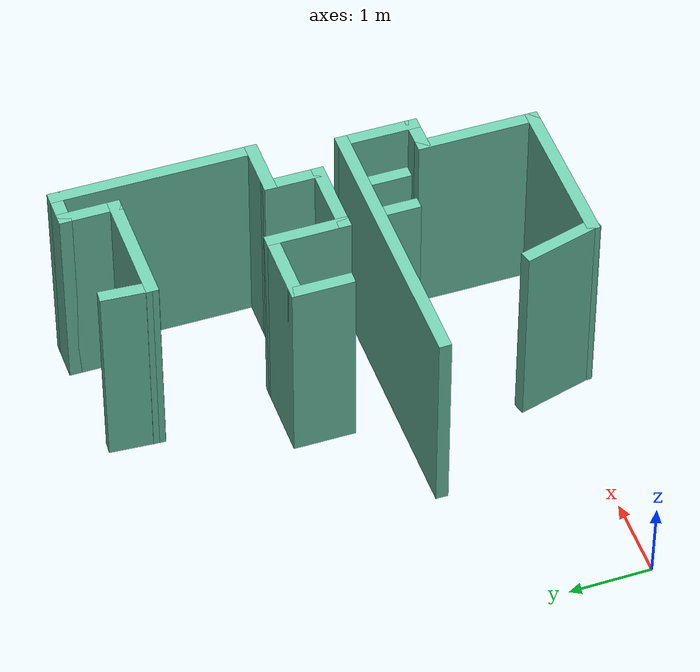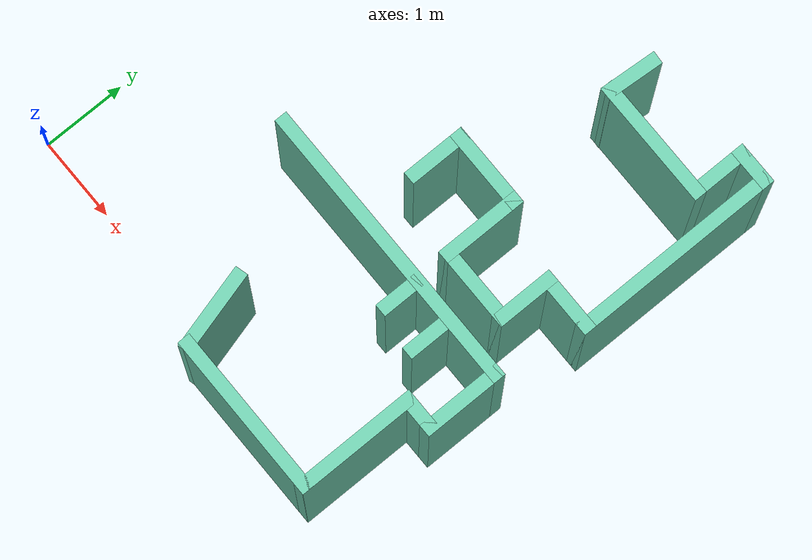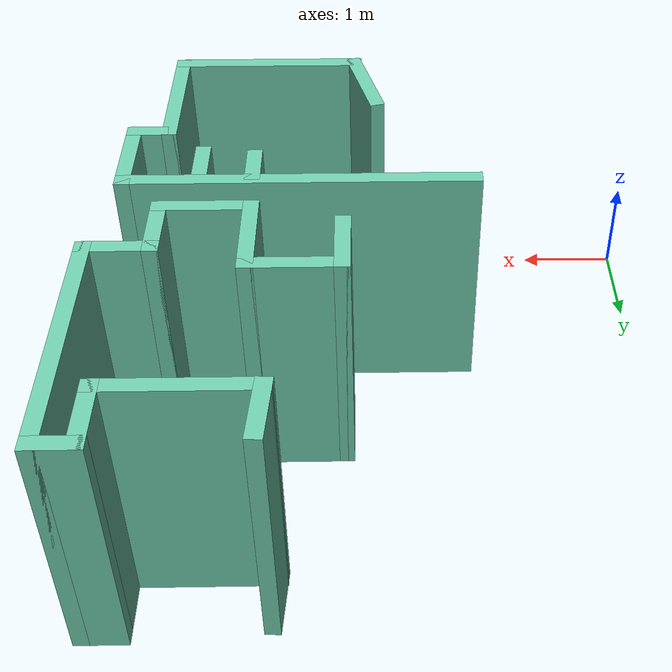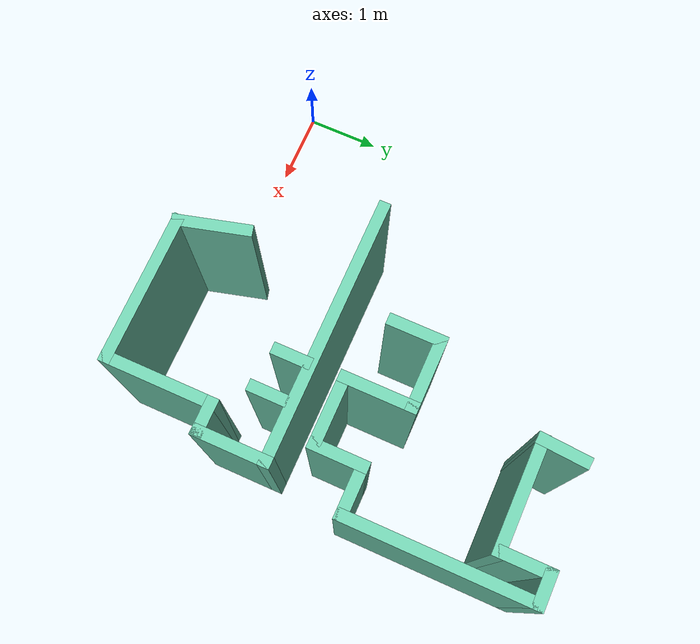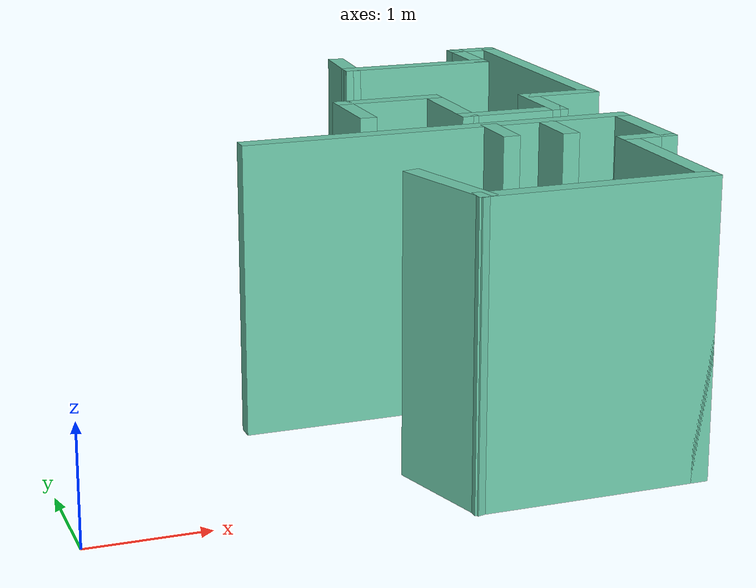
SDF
<sdf version="1.6">
 <model name="map_28">
  <link name="Wall_100">
   <pose>4.38795 2.27226 0 0 -0 0</pose>
   <visual name="Wall_100_Visual">
    <pose>0 0 1.25 0 -0 0</pose>
    <geometry><box><size>1 0.15 2.5</size></box></geometry>
    <material>
     <script><uri>file://media/materials/scripts/gazebo.material</uri><name>Gazebo/Grey</name></script>
     <ambient>0.435294 0.796078 0.67451 1</ambient>
     <shader type="pixel"/>
    </material>
    <meta><layer>0</layer></meta>
   </visual>
   <collision name="Wall_100_Collision">
    <pose>0 0 1.25 0 -0 0</pose>
    <geometry><box><size>1 0.15 2.5</size></box></geometry>
    <surface>
     <friction>
      <ode><mu>1</mu><mu2>1</mu2><fdir1>0 0 0</fdir1><slip1>0</slip1><slip2>0</slip2></ode>
      <torsional>
       <coefficient>1</coefficient>
       <patch_radius>0</patch_radius>
       <surface_radius>0</surface_radius>
       <use_patch_radius>1</use_patch_radius>
       <ode><slip>0</slip></ode>
      </torsional>
     </friction>
     <bounce><restitution_coefficient>0</restitution_coefficient><threshold>1e+06</threshold></bounce>
     <contact>
      <collide_without_contact>0</collide_without_contact>
      <collide_without_contact_bitmask>1</collide_without_contact_bitmask>
      <collide_bitmask>1</collide_bitmask>
      <ode>
       <soft_cfm>0</soft_cfm>
       <soft_erp>0.2</soft_erp>
       <kp>1e+13</kp>
       <kd>1</kd>
       <max_vel>0.01</max_vel>
       <min_depth>0</min_depth>
      </ode>
      <bullet>
       <split_impulse>1</split_impulse>
       <split_impulse_penetration_threshold>-0.01</split_impulse_penetration_threshold>
       <soft_cfm>0</soft_cfm>
       <soft_erp>0.2</soft_erp>
       <kp>1e+13</kp>
       <kd>1</kd>
      </bullet>
     </contact>
    </surface>
   </collision>
  </link>
  <link name="Wall_101">
   <pose>4.81295 2.57226 0 0 -0 1.5708</pose>
   <visual name="Wall_101_Visual">
    <pose>0 0 1.25 0 -0 0</pose>
    <geometry><box><size>0.75 0.15 2.5</size></box></geometry>
    <material>
     <script><uri>file://media/materials/scripts/gazebo.material</uri><name>Gazebo/Grey</name></script>
     <ambient>0.435294 0.796078 0.67451 1</ambient>
     <shader type="pixel"/>
    </material>
    <meta><layer>0</layer></meta>
   </visual>
   <collision name="Wall_101_Collision">
    <pose>0 0 1.25 0 -0 0</pose>
    <geometry><box><size>0.75 0.15 2.5</size></box></geometry>
    <surface>
     <friction>
      <ode><mu>1</mu><mu2>1</mu2><fdir1>0 0 0</fdir1><slip1>0</slip1><slip2>0</slip2></ode>
      <torsional>
       <coefficient>1</coefficient>
       <patch_radius>0</patch_radius>
       <surface_radius>0</surface_radius>
       <use_patch_radius>1</use_patch_radius>
       <ode><slip>0</slip></ode>
      </torsional>
     </friction>
     <bounce><restitution_coefficient>0</restitution_coefficient><threshold>1e+06</threshold></bounce>
     <contact>
      <collide_without_contact>0</collide_without_contact>
      <collide_without_contact_bitmask>1</collide_without_contact_bitmask>
      <collide_bitmask>1</collide_bitmask>
      <ode>
       <soft_cfm>0</soft_cfm>
       <soft_erp>0.2</soft_erp>
       <kp>1e+13</kp>
       <kd>1</kd>
       <max_vel>0.01</max_vel>
       <min_depth>0</min_depth>
      </ode>
      <bullet>
       <split_impulse>1</split_impulse>
       <split_impulse_penetration_threshold>-0.01</split_impulse_penetration_threshold>
       <soft_cfm>0</soft_cfm>
       <soft_erp>0.2</soft_erp>
       <kp>1e+13</kp>
       <kd>1</kd>
      </bullet>
     </contact>
    </surface>
   </collision>
  </link>
  <link name="Wall_102">
   <pose>5.11295 2.87226 0 0 -0 0</pose>
   <visual name="Wall_102_Visual">
    <pose>0 0 1.25 0 -0 0</pose>
    <geometry><box><size>0.75 0.15 2.5</size></box></geometry>
    <material>
     <script><uri>file://media/materials/scripts/gazebo.material</uri><name>Gazebo/Grey</name></script>
     <ambient>0.435294 0.796078 0.67451 1</ambient>
     <shader type="pixel"/>
    </material>
    <meta><layer>0</layer></meta>
   </visual>
   <collision name="Wall_102_Collision">
    <pose>0 0 1.25 0 -0 0</pose>
    <geometry><box><size>0.75 0.15 2.5</size></box></geometry>
    <surface>
     <friction>
      <ode><mu>1</mu><mu2>1</mu2><fdir1>0 0 0</fdir1><slip1>0</slip1><slip2>0</slip2></ode>
      <torsional>
       <coefficient>1</coefficient>
       <patch_radius>0</patch_radius>
       <surface_radius>0</surface_radius>
       <use_patch_radius>1</use_patch_radius>
       <ode><slip>0</slip></ode>
      </torsional>
     </friction>
     <bounce><restitution_coefficient>0</restitution_coefficient><threshold>1e+06</threshold></bounce>
     <contact>
      <collide_without_contact>0</collide_without_contact>
      <collide_without_contact_bitmask>1</collide_without_contact_bitmask>
      <collide_bitmask>1</collide_bitmask>
      <ode>
       <soft_cfm>0</soft_cfm>
       <soft_erp>0.2</soft_erp>
       <kp>1e+13</kp>
       <kd>1</kd>
       <max_vel>0.01</max_vel>
       <min_depth>0</min_depth>
      </ode>
      <bullet>
       <split_impulse>1</split_impulse>
       <split_impulse_penetration_threshold>-0.01</split_impulse_penetration_threshold>
       <soft_cfm>0</soft_cfm>
       <soft_erp>0.2</soft_erp>
       <kp>1e+13</kp>
       <kd>1</kd>
      </bullet>
     </contact>
    </surface>
   </collision>
  </link>
  <link name="Wall_103">
   <pose>5.41295 4.04726 0 0 -0 1.5708</pose>
   <visual name="Wall_103_Visual">
    <pose>0 0 1.25 0 -0 0</pose>
    <geometry><box><size>2.5 0.15 2.5</size></box></geometry>
    <material>
     <script><uri>file://media/materials/scripts/gazebo.material</uri><name>Gazebo/Grey</name></script>
     <ambient>0.435294 0.796078 0.67451 1</ambient>
     <shader type="pixel"/>
    </material>
    <meta><layer>0</layer></meta>
   </visual>
   <collision name="Wall_103_Collision">
    <pose>0 0 1.25 0 -0 0</pose>
    <geometry><box><size>2.5 0.15 2.5</size></box></geometry>
    <surface>
     <friction>
      <ode><mu>1</mu><mu2>1</mu2><fdir1>0 0 0</fdir1><slip1>0</slip1><slip2>0</slip2></ode>
      <torsional>
       <coefficient>1</coefficient>
       <patch_radius>0</patch_radius>
       <surface_radius>0</surface_radius>
       <use_patch_radius>1</use_patch_radius>
       <ode><slip>0</slip></ode>
      </torsional>
     </friction>
     <bounce><restitution_coefficient>0</restitution_coefficient><threshold>1e+06</threshold></bounce>
     <contact>
      <collide_without_contact>0</collide_without_contact>
      <collide_without_contact_bitmask>1</collide_without_contact_bitmask>
      <collide_bitmask>1</collide_bitmask>
      <ode>
       <soft_cfm>0</soft_cfm>
       <soft_erp>0.2</soft_erp>
       <kp>1e+13</kp>
       <kd>1</kd>
       <max_vel>0.01</max_vel>
       <min_depth>0</min_depth>
      </ode>
      <bullet>
       <split_impulse>1</split_impulse>
       <split_impulse_penetration_threshold>-0.01</split_impulse_penetration_threshold>
       <soft_cfm>0</soft_cfm>
       <soft_erp>0.2</soft_erp>
       <kp>1e+13</kp>
       <kd>1</kd>
      </bullet>
     </contact>
    </surface>
   </collision>
  </link>
  <link name="Wall_104">
   <pose>5.23795 5.22226 0 0 -0 3.14159</pose>
   <visual name="Wall_104_Visual">
    <pose>0 0 1.25 0 -0 0</pose>
    <geometry><box><size>0.5 0.15 2.5</size></box></geometry>
    <material>
     <script><uri>file://media/materials/scripts/gazebo.material</uri><name>Gazebo/Grey</name></script>
     <ambient>0.435294 0.796078 0.67451 1</ambient>
     <shader type="pixel"/>
    </material>
    <meta><layer>0</layer></meta>
   </visual>
   <collision name="Wall_104_Collision">
    <pose>0 0 1.25 0 -0 0</pose>
    <geometry><box><size>0.5 0.15 2.5</size></box></geometry>
    <surface>
     <friction>
      <ode><mu>1</mu><mu2>1</mu2><fdir1>0 0 0</fdir1><slip1>0</slip1><slip2>0</slip2></ode>
      <torsional>
       <coefficient>1</coefficient>
       <patch_radius>0</patch_radius>
       <surface_radius>0</surface_radius>
       <use_patch_radius>1</use_patch_radius>
       <ode><slip>0</slip></ode>
      </torsional>
     </friction>
     <bounce><restitution_coefficient>0</restitution_coefficient><threshold>1e+06</threshold></bounce>
     <contact>
      <collide_without_contact>0</collide_without_contact>
      <collide_without_contact_bitmask>1</collide_without_contact_bitmask>
      <collide_bitmask>1</collide_bitmask>
      <ode>
       <soft_cfm>0</soft_cfm>
       <soft_erp>0.2</soft_erp>
       <kp>1e+13</kp>
       <kd>1</kd>
       <max_vel>0.01</max_vel>
       <min_depth>0</min_depth>
      </ode>
      <bullet>
       <split_impulse>1</split_impulse>
       <split_impulse_penetration_threshold>-0.01</split_impulse_penetration_threshold>
       <soft_cfm>0</soft_cfm>
       <soft_erp>0.2</soft_erp>
       <kp>1e+13</kp>
       <kd>1</kd>
      </bullet>
     </contact>
    </surface>
   </collision>
  </link>
  <link name="Wall_105">
   <pose>5.06295 4.92226 0 0 0 -1.5708</pose>
   <visual name="Wall_105_Visual">
    <pose>0 0 1.25 0 -0 0</pose>
    <geometry><box><size>0.75 0.15 2.5</size></box></geometry>
    <material>
     <script><uri>file://media/materials/scripts/gazebo.material</uri><name>Gazebo/Grey</name></script>
     <ambient>0.435294 0.796078 0.67451 1</ambient>
     <shader type="pixel"/>
    </material>
    <meta><layer>0</layer></meta>
   </visual>
   <collision name="Wall_105_Collision">
    <pose>0 0 1.25 0 -0 0</pose>
    <geometry><box><size>0.75 0.15 2.5</size></box></geometry>
    <surface>
     <friction>
      <ode><mu>1</mu><mu2>1</mu2><fdir1>0 0 0</fdir1><slip1>0</slip1><slip2>0</slip2></ode>
      <torsional>
       <coefficient>1</coefficient>
       <patch_radius>0</patch_radius>
       <surface_radius>0</surface_radius>
       <use_patch_radius>1</use_patch_radius>
       <ode><slip>0</slip></ode>
      </torsional>
     </friction>
     <bounce><restitution_coefficient>0</restitution_coefficient><threshold>1e+06</threshold></bounce>
     <contact>
      <collide_without_contact>0</collide_without_contact>
      <collide_without_contact_bitmask>1</collide_without_contact_bitmask>
      <collide_bitmask>1</collide_bitmask>
      <ode>
       <soft_cfm>0</soft_cfm>
       <soft_erp>0.2</soft_erp>
       <kp>1e+13</kp>
       <kd>1</kd>
       <max_vel>0.01</max_vel>
       <min_depth>0</min_depth>
      </ode>
      <bullet>
       <split_impulse>1</split_impulse>
       <split_impulse_penetration_threshold>-0.01</split_impulse_penetration_threshold>
       <soft_cfm>0</soft_cfm>
       <soft_erp>0.2</soft_erp>
       <kp>1e+13</kp>
       <kd>1</kd>
      </bullet>
     </contact>
    </surface>
   </collision>
  </link>
  <link name="Wall_108">
   <pose>4.38795 4.62226 0 0 -0 3.14159</pose>
   <visual name="Wall_108_Visual">
    <pose>0 0 1.25 0 -0 0</pose>
    <geometry><box><size>1.5 0.15 2.5</size></box></geometry>
    <material>
     <script><uri>file://media/materials/scripts/gazebo.material</uri><name>Gazebo/Grey</name></script>
     <ambient>0.435294 0.796078 0.67451 1</ambient>
     <shader type="pixel"/>
    </material>
    <meta><layer>0</layer></meta>
   </visual>
   <collision name="Wall_108_Collision">
    <pose>0 0 1.25 0 -0 0</pose>
    <geometry><box><size>1.5 0.15 2.5</size></box></geometry>
    <surface>
     <friction>
      <ode><mu>1</mu><mu2>1</mu2><fdir1>0 0 0</fdir1><slip1>0</slip1><slip2>0</slip2></ode>
      <torsional>
       <coefficient>1</coefficient>
       <patch_radius>0</patch_radius>
       <surface_radius>0</surface_radius>
       <use_patch_radius>1</use_patch_radius>
       <ode><slip>0</slip></ode>
      </torsional>
     </friction>
     <bounce><restitution_coefficient>0</restitution_coefficient><threshold>1e+06</threshold></bounce>
     <contact>
      <collide_without_contact>0</collide_without_contact>
      <collide_without_contact_bitmask>1</collide_without_contact_bitmask>
      <collide_bitmask>1</collide_bitmask>
      <ode>
       <soft_cfm>0</soft_cfm>
       <soft_erp>0.2</soft_erp>
       <kp>1e+13</kp>
       <kd>1</kd>
       <max_vel>0.01</max_vel>
       <min_depth>0</min_depth>
      </ode>
      <bullet>
       <split_impulse>1</split_impulse>
       <split_impulse_penetration_threshold>-0.01</split_impulse_penetration_threshold>
       <soft_cfm>0</soft_cfm>
       <soft_erp>0.2</soft_erp>
       <kp>1e+13</kp>
       <kd>1</kd>
      </bullet>
     </contact>
    </surface>
   </collision>
  </link>
  <link name="Wall_109">
   <pose>3.73137 4.88054 0 0 -0 1.4996</pose>
   <visual name="Wall_109_Visual">
    <pose>0 0 1.25 0 -0 0</pose>
    <geometry><box><size>0.667875 0.15 2.5</size></box></geometry>
    <material>
     <script><uri>file://media/materials/scripts/gazebo.material</uri><name>Gazebo/Grey</name></script>
     <ambient>0.435294 0.796078 0.67451 1</ambient>
     <shader type="pixel"/>
    </material>
    <meta><layer>0</layer></meta>
   </visual>
   <collision name="Wall_109_Collision">
    <pose>0 0 1.25 0 -0 0</pose>
    <geometry><box><size>0.667875 0.15 2.5</size></box></geometry>
    <surface>
     <friction>
      <ode><mu>1</mu><mu2>1</mu2><fdir1>0 0 0</fdir1><slip1>0</slip1><slip2>0</slip2></ode>
      <torsional>
       <coefficient>1</coefficient>
       <patch_radius>0</patch_radius>
       <surface_radius>0</surface_radius>
       <use_patch_radius>1</use_patch_radius>
       <ode><slip>0</slip></ode>
      </torsional>
     </friction>
     <bounce><restitution_coefficient>0</restitution_coefficient><threshold>1e+06</threshold></bounce>
     <contact>
      <collide_without_contact>0</collide_without_contact>
      <collide_without_contact_bitmask>1</collide_without_contact_bitmask>
      <collide_bitmask>1</collide_bitmask>
      <ode>
       <soft_cfm>0</soft_cfm>
       <soft_erp>0.2</soft_erp>
       <kp>1e+13</kp>
       <kd>1</kd>
       <max_vel>0.01</max_vel>
       <min_depth>0</min_depth>
      </ode>
      <bullet>
       <split_impulse>1</split_impulse>
       <split_impulse_penetration_threshold>-0.01</split_impulse_penetration_threshold>
       <soft_cfm>0</soft_cfm>
       <soft_erp>0.2</soft_erp>
       <kp>1e+13</kp>
       <kd>1</kd>
      </bullet>
     </contact>
    </surface>
   </collision>
  </link>
  <link name="Wall_124">
   <pose>3.9811 1.60989 0 0 0 -1.5708</pose>
   <visual name="Wall_124_Visual">
    <pose>0 0 1.25 0 -0 0</pose>
    <geometry><box><size>0.5 0.15 2.5</size></box></geometry>
    <material>
     <script><uri>file://media/materials/scripts/gazebo.material</uri><name>Gazebo/Grey</name></script>
     <ambient>0.435294 0.796078 0.67451 1</ambient>
     <shader type="pixel"/>
    </material>
    <meta><layer>0</layer></meta>
   </visual>
   <collision name="Wall_124_Collision">
    <pose>0 0 1.25 0 -0 0</pose>
    <geometry><box><size>0.5 0.15 2.5</size></box></geometry>
    <surface>
     <friction>
      <ode><mu>1</mu><mu2>1</mu2><fdir1>0 0 0</fdir1><slip1>0</slip1><slip2>0</slip2></ode>
      <torsional>
       <coefficient>1</coefficient>
       <patch_radius>0</patch_radius>
       <surface_radius>0</surface_radius>
       <use_patch_radius>1</use_patch_radius>
       <ode><slip>0</slip></ode>
      </torsional>
     </friction>
     <bounce><restitution_coefficient>0</restitution_coefficient><threshold>1e+06</threshold></bounce>
     <contact>
      <collide_without_contact>0</collide_without_contact>
      <collide_without_contact_bitmask>1</collide_without_contact_bitmask>
      <collide_bitmask>1</collide_bitmask>
      <ode>
       <soft_cfm>0</soft_cfm>
       <soft_erp>0.2</soft_erp>
       <kp>1e+13</kp>
       <kd>1</kd>
       <max_vel>0.01</max_vel>
       <min_depth>0</min_depth>
      </ode>
      <bullet>
       <split_impulse>1</split_impulse>
       <split_impulse_penetration_threshold>-0.01</split_impulse_penetration_threshold>
       <soft_cfm>0</soft_cfm>
       <soft_erp>0.2</soft_erp>
       <kp>1e+13</kp>
       <kd>1</kd>
      </bullet>
     </contact>
    </surface>
   </collision>
  </link>
  <link name="Wall_126">
   <pose>4.48997 1.54049 0 0 0 -1.5708</pose>
   <visual name="Wall_126_Visual">
    <pose>0 0 1.25 0 -0 0</pose>
    <geometry><box><size>0.5 0.15 2.5</size></box></geometry>
    <material>
     <script><uri>file://media/materials/scripts/gazebo.material</uri><name>Gazebo/Grey</name></script>
     <ambient>0.435294 0.796078 0.67451 1</ambient>
     <shader type="pixel"/>
    </material>
    <meta><layer>0</layer></meta>
   </visual>
   <collision name="Wall_126_Collision">
    <pose>0 0 1.25 0 -0 0</pose>
    <geometry><box><size>0.5 0.15 2.5</size></box></geometry>
    <surface>
     <friction>
      <ode><mu>1</mu><mu2>1</mu2><fdir1>0 0 0</fdir1><slip1>0</slip1><slip2>0</slip2></ode>
      <torsional>
       <coefficient>1</coefficient>
       <patch_radius>0</patch_radius>
       <surface_radius>0</surface_radius>
       <use_patch_radius>1</use_patch_radius>
       <ode><slip>0</slip></ode>
      </torsional>
     </friction>
     <bounce><restitution_coefficient>0</restitution_coefficient><threshold>1e+06</threshold></bounce>
     <contact>
      <collide_without_contact>0</collide_without_contact>
      <collide_without_contact_bitmask>1</collide_without_contact_bitmask>
      <collide_bitmask>1</collide_bitmask>
      <ode>
       <soft_cfm>0</soft_cfm>
       <soft_erp>0.2</soft_erp>
       <kp>1e+13</kp>
       <kd>1</kd>
       <max_vel>0.01</max_vel>
       <min_depth>0</min_depth>
      </ode>
      <bullet>
       <split_impulse>1</split_impulse>
       <split_impulse_penetration_threshold>-0.01</split_impulse_penetration_threshold>
       <soft_cfm>0</soft_cfm>
       <soft_erp>0.2</soft_erp>
       <kp>1e+13</kp>
       <kd>1</kd>
      </bullet>
     </contact>
    </surface>
   </collision>
  </link>
  <link name="Wall_74">
   <pose>2.89955 0.058662 0 0 0 -1.309</pose>
   <visual name="Wall_74_Visual">
    <pose>0 0 1.25 0 -0 0</pose>
    <geometry><box><size>1 0.15 2.5</size></box></geometry>
    <material>
     <script><uri>file://media/materials/scripts/gazebo.material</uri><name>Gazebo/Grey</name></script>
     <ambient>0.435294 0.796078 0.67451 1</ambient>
     <shader type="pixel"/>
    </material>
    <meta><layer>0</layer></meta>
   </visual>
   <collision name="Wall_74_Collision">
    <pose>0 0 1.25 0 -0 0</pose>
    <geometry><box><size>1 0.15 2.5</size></box></geometry>
    <surface>
     <friction>
      <ode><mu>1</mu><mu2>1</mu2><fdir1>0 0 0</fdir1><slip1>0</slip1><slip2>0</slip2></ode>
      <torsional>
       <coefficient>1</coefficient>
       <patch_radius>0</patch_radius>
       <surface_radius>0</surface_radius>
       <use_patch_radius>1</use_patch_radius>
       <ode><slip>0</slip></ode>
      </torsional>
     </friction>
     <bounce><restitution_coefficient>0</restitution_coefficient><threshold>1e+06</threshold></bounce>
     <contact>
      <collide_without_contact>0</collide_without_contact>
      <collide_without_contact_bitmask>1</collide_without_contact_bitmask>
      <collide_bitmask>1</collide_bitmask>
      <ode>
       <soft_cfm>0</soft_cfm>
       <soft_erp>0.2</soft_erp>
       <kp>1e+13</kp>
       <kd>1</kd>
       <max_vel>0.01</max_vel>
       <min_depth>0</min_depth>
      </ode>
      <bullet>
       <split_impulse>1</split_impulse>
       <split_impulse_penetration_threshold>-0.01</split_impulse_penetration_threshold>
       <soft_cfm>0</soft_cfm>
       <soft_erp>0.2</soft_erp>
       <kp>1e+13</kp>
       <kd>1</kd>
      </bullet>
     </contact>
    </surface>
   </collision>
  </link>
  <link name="Wall_75">
   <pose>3.93454 -0.351857 0 0 -0 0</pose>
   <visual name="Wall_75_Visual">
    <pose>0 0 1.25 0 -0 0</pose>
    <geometry><box><size>2 0.15 2.5</size></box></geometry>
    <material>
     <script><uri>file://media/materials/scripts/gazebo.material</uri><name>Gazebo/Grey</name></script>
     <ambient>0.435294 0.796078 0.67451 1</ambient>
     <shader type="pixel"/>
    </material>
    <meta><layer>0</layer></meta>
   </visual>
   <collision name="Wall_75_Collision">
    <pose>0 0 1.25 0 -0 0</pose>
    <geometry><box><size>2 0.15 2.5</size></box></geometry>
    <surface>
     <friction>
      <ode><mu>1</mu><mu2>1</mu2><fdir1>0 0 0</fdir1><slip1>0</slip1><slip2>0</slip2></ode>
      <torsional>
       <coefficient>1</coefficient>
       <patch_radius>0</patch_radius>
       <surface_radius>0</surface_radius>
       <use_patch_radius>1</use_patch_radius>
       <ode><slip>0</slip></ode>
      </torsional>
     </friction>
     <bounce><restitution_coefficient>0</restitution_coefficient><threshold>1e+06</threshold></bounce>
     <contact>
      <collide_without_contact>0</collide_without_contact>
      <collide_without_contact_bitmask>1</collide_without_contact_bitmask>
      <collide_bitmask>1</collide_bitmask>
      <ode>
       <soft_cfm>0</soft_cfm>
       <soft_erp>0.2</soft_erp>
       <kp>1e+13</kp>
       <kd>1</kd>
       <max_vel>0.01</max_vel>
       <min_depth>0</min_depth>
      </ode>
      <bullet>
       <split_impulse>1</split_impulse>
       <split_impulse_penetration_threshold>-0.01</split_impulse_penetration_threshold>
       <soft_cfm>0</soft_cfm>
       <soft_erp>0.2</soft_erp>
       <kp>1e+13</kp>
       <kd>1</kd>
      </bullet>
     </contact>
    </surface>
   </collision>
  </link>
  <link name="Wall_76">
   <pose>4.85954 0.323143 0 0 -0 1.5708</pose>
   <visual name="Wall_76_Visual">
    <pose>0 0 1.25 0 -0 0</pose>
    <geometry><box><size>1.5 0.15 2.5</size></box></geometry>
    <material>
     <script><uri>file://media/materials/scripts/gazebo.material</uri><name>Gazebo/Grey</name></script>
     <ambient>0.435294 0.796078 0.67451 1</ambient>
     <shader type="pixel"/>
    </material>
    <meta><layer>0</layer></meta>
   </visual>
   <collision name="Wall_76_Collision">
    <pose>0 0 1.25 0 -0 0</pose>
    <geometry><box><size>1.5 0.15 2.5</size></box></geometry>
    <surface>
     <friction>
      <ode><mu>1</mu><mu2>1</mu2><fdir1>0 0 0</fdir1><slip1>0</slip1><slip2>0</slip2></ode>
      <torsional>
       <coefficient>1</coefficient>
       <patch_radius>0</patch_radius>
       <surface_radius>0</surface_radius>
       <use_patch_radius>1</use_patch_radius>
       <ode><slip>0</slip></ode>
      </torsional>
     </friction>
     <bounce><restitution_coefficient>0</restitution_coefficient><threshold>1e+06</threshold></bounce>
     <contact>
      <collide_without_contact>0</collide_without_contact>
      <collide_without_contact_bitmask>1</collide_without_contact_bitmask>
      <collide_bitmask>1</collide_bitmask>
      <ode>
       <soft_cfm>0</soft_cfm>
       <soft_erp>0.2</soft_erp>
       <kp>1e+13</kp>
       <kd>1</kd>
       <max_vel>0.01</max_vel>
       <min_depth>0</min_depth>
      </ode>
      <bullet>
       <split_impulse>1</split_impulse>
       <split_impulse_penetration_threshold>-0.01</split_impulse_penetration_threshold>
       <soft_cfm>0</soft_cfm>
       <soft_erp>0.2</soft_erp>
       <kp>1e+13</kp>
       <kd>1</kd>
      </bullet>
     </contact>
    </surface>
   </collision>
  </link>
  <link name="Wall_77">
   <pose>5.03454 0.998143 0 0 -0 0</pose>
   <visual name="Wall_77_Visual">
    <pose>0 0 1.25 0 -0 0</pose>
    <geometry><box><size>0.5 0.15 2.5</size></box></geometry>
    <material>
     <script><uri>file://media/materials/scripts/gazebo.material</uri><name>Gazebo/Grey</name></script>
     <ambient>0.435294 0.796078 0.67451 1</ambient>
     <shader type="pixel"/>
    </material>
    <meta><layer>0</layer></meta>
   </visual>
   <collision name="Wall_77_Collision">
    <pose>0 0 1.25 0 -0 0</pose>
    <geometry><box><size>0.5 0.15 2.5</size></box></geometry>
    <surface>
     <friction>
      <ode><mu>1</mu><mu2>1</mu2><fdir1>0 0 0</fdir1><slip1>0</slip1><slip2>0</slip2></ode>
      <torsional>
       <coefficient>1</coefficient>
       <patch_radius>0</patch_radius>
       <surface_radius>0</surface_radius>
       <use_patch_radius>1</use_patch_radius>
       <ode><slip>0</slip></ode>
      </torsional>
     </friction>
     <bounce><restitution_coefficient>0</restitution_coefficient><threshold>1e+06</threshold></bounce>
     <contact>
      <collide_without_contact>0</collide_without_contact>
      <collide_without_contact_bitmask>1</collide_without_contact_bitmask>
      <collide_bitmask>1</collide_bitmask>
      <ode>
       <soft_cfm>0</soft_cfm>
       <soft_erp>0.2</soft_erp>
       <kp>1e+13</kp>
       <kd>1</kd>
       <max_vel>0.01</max_vel>
       <min_depth>0</min_depth>
      </ode>
      <bullet>
       <split_impulse>1</split_impulse>
       <split_impulse_penetration_threshold>-0.01</split_impulse_penetration_threshold>
       <soft_cfm>0</soft_cfm>
       <soft_erp>0.2</soft_erp>
       <kp>1e+13</kp>
       <kd>1</kd>
      </bullet>
     </contact>
    </surface>
   </collision>
  </link>
  <link name="Wall_78">
   <pose>5.20955 1.42314 0 0 -0 1.5708</pose>
   <visual name="Wall_78_Visual">
    <pose>0 0 1.25 0 -0 0</pose>
    <geometry><box><size>1 0.15 2.5</size></box></geometry>
    <material>
     <script><uri>file://media/materials/scripts/gazebo.material</uri><name>Gazebo/Grey</name></script>
     <ambient>0.435294 0.796078 0.67451 1</ambient>
     <shader type="pixel"/>
    </material>
    <meta><layer>0</layer></meta>
   </visual>
   <collision name="Wall_78_Collision">
    <pose>0 0 1.25 0 -0 0</pose>
    <geometry><box><size>1 0.15 2.5</size></box></geometry>
    <surface>
     <friction>
      <ode><mu>1</mu><mu2>1</mu2><fdir1>0 0 0</fdir1><slip1>0</slip1><slip2>0</slip2></ode>
      <torsional>
       <coefficient>1</coefficient>
       <patch_radius>0</patch_radius>
       <surface_radius>0</surface_radius>
       <use_patch_radius>1</use_patch_radius>
       <ode><slip>0</slip></ode>
      </torsional>
     </friction>
     <bounce><restitution_coefficient>0</restitution_coefficient><threshold>1e+06</threshold></bounce>
     <contact>
      <collide_without_contact>0</collide_without_contact>
      <collide_without_contact_bitmask>1</collide_without_contact_bitmask>
      <collide_bitmask>1</collide_bitmask>
      <ode>
       <soft_cfm>0</soft_cfm>
       <soft_erp>0.2</soft_erp>
       <kp>1e+13</kp>
       <kd>1</kd>
       <max_vel>0.01</max_vel>
       <min_depth>0</min_depth>
      </ode>
      <bullet>
       <split_impulse>1</split_impulse>
       <split_impulse_penetration_threshold>-0.01</split_impulse_penetration_threshold>
       <soft_cfm>0</soft_cfm>
       <soft_erp>0.2</soft_erp>
       <kp>1e+13</kp>
       <kd>1</kd>
      </bullet>
     </contact>
    </surface>
   </collision>
  </link>
  <link name="Wall_79">
   <pose>3.53455 1.84814 0 0 -0 3.14159</pose>
   <visual name="Wall_79_Visual">
    <pose>0 0 1.25 0 -0 0</pose>
    <geometry><box><size>3.5 0.15 2.5</size></box></geometry>
    <material>
     <script><uri>file://media/materials/scripts/gazebo.material</uri><name>Gazebo/Grey</name></script>
     <ambient>0.435294 0.796078 0.67451 1</ambient>
     <shader type="pixel"/>
    </material>
    <meta><layer>0</layer></meta>
   </visual>
   <collision name="Wall_79_Collision">
    <pose>0 0 1.25 0 -0 0</pose>
    <geometry><box><size>3.5 0.15 2.5</size></box></geometry>
    <surface>
     <friction>
      <ode><mu>1</mu><mu2>1</mu2><fdir1>0 0 0</fdir1><slip1>0</slip1><slip2>0</slip2></ode>
      <torsional>
       <coefficient>1</coefficient>
       <patch_radius>0</patch_radius>
       <surface_radius>0</surface_radius>
       <use_patch_radius>1</use_patch_radius>
       <ode><slip>0</slip></ode>
      </torsional>
     </friction>
     <bounce><restitution_coefficient>0</restitution_coefficient><threshold>1e+06</threshold></bounce>
     <contact>
      <collide_without_contact>0</collide_without_contact>
      <collide_without_contact_bitmask>1</collide_without_contact_bitmask>
      <collide_bitmask>1</collide_bitmask>
      <ode>
       <soft_cfm>0</soft_cfm>
       <soft_erp>0.2</soft_erp>
       <kp>1e+13</kp>
       <kd>1</kd>
       <max_vel>0.01</max_vel>
       <min_depth>0</min_depth>
      </ode>
      <bullet>
       <split_impulse>1</split_impulse>
       <split_impulse_penetration_threshold>-0.01</split_impulse_penetration_threshold>
       <soft_cfm>0</soft_cfm>
       <soft_erp>0.2</soft_erp>
       <kp>1e+13</kp>
       <kd>1</kd>
      </bullet>
     </contact>
    </surface>
   </collision>
  </link>
  <link name="Wall_97">
   <pose>3.11295 2.82226 0 0 -0 1.5708</pose>
   <visual name="Wall_97_Visual">
    <pose>0 0 1.25 0 -0 0</pose>
    <geometry><box><size>0.75 0.15 2.5</size></box></geometry>
    <material>
     <script><uri>file://media/materials/scripts/gazebo.material</uri><name>Gazebo/Grey</name></script>
     <ambient>0.435294 0.796078 0.67451 1</ambient>
     <shader type="pixel"/>
    </material>
    <meta><layer>0</layer></meta>
   </visual>
   <collision name="Wall_97_Collision">
    <pose>0 0 1.25 0 -0 0</pose>
    <geometry><box><size>0.75 0.15 2.5</size></box></geometry>
    <surface>
     <friction>
      <ode><mu>1</mu><mu2>1</mu2><fdir1>0 0 0</fdir1><slip1>0</slip1><slip2>0</slip2></ode>
      <torsional>
       <coefficient>1</coefficient>
       <patch_radius>0</patch_radius>
       <surface_radius>0</surface_radius>
       <use_patch_radius>1</use_patch_radius>
       <ode><slip>0</slip></ode>
      </torsional>
     </friction>
     <bounce><restitution_coefficient>0</restitution_coefficient><threshold>1e+06</threshold></bounce>
     <contact>
      <collide_without_contact>0</collide_without_contact>
      <collide_without_contact_bitmask>1</collide_without_contact_bitmask>
      <collide_bitmask>1</collide_bitmask>
      <ode>
       <soft_cfm>0</soft_cfm>
       <soft_erp>0.2</soft_erp>
       <kp>1e+13</kp>
       <kd>1</kd>
       <max_vel>0.01</max_vel>
       <min_depth>0</min_depth>
      </ode>
      <bullet>
       <split_impulse>1</split_impulse>
       <split_impulse_penetration_threshold>-0.01</split_impulse_penetration_threshold>
       <soft_cfm>0</soft_cfm>
       <soft_erp>0.2</soft_erp>
       <kp>1e+13</kp>
       <kd>1</kd>
      </bullet>
     </contact>
    </surface>
   </collision>
  </link>
  <link name="Wall_98">
   <pose>3.53795 3.12226 0 0 -0 0</pose>
   <visual name="Wall_98_Visual">
    <pose>0 0 1.25 0 -0 0</pose>
    <geometry><box><size>1 0.15 2.5</size></box></geometry>
    <material>
     <script><uri>file://media/materials/scripts/gazebo.material</uri><name>Gazebo/Grey</name></script>
     <ambient>0.435294 0.796078 0.67451 1</ambient>
     <shader type="pixel"/>
    </material>
    <meta><layer>0</layer></meta>
   </visual>
   <collision name="Wall_98_Collision">
    <pose>0 0 1.25 0 -0 0</pose>
    <geometry><box><size>1 0.15 2.5</size></box></geometry>
    <surface>
     <friction>
      <ode><mu>1</mu><mu2>1</mu2><fdir1>0 0 0</fdir1><slip1>0</slip1><slip2>0</slip2></ode>
      <torsional>
       <coefficient>1</coefficient>
       <patch_radius>0</patch_radius>
       <surface_radius>0</surface_radius>
       <use_patch_radius>1</use_patch_radius>
       <ode><slip>0</slip></ode>
      </torsional>
     </friction>
     <bounce><restitution_coefficient>0</restitution_coefficient><threshold>1e+06</threshold></bounce>
     <contact>
      <collide_without_contact>0</collide_without_contact>
      <collide_without_contact_bitmask>1</collide_without_contact_bitmask>
      <collide_bitmask>1</collide_bitmask>
      <ode>
       <soft_cfm>0</soft_cfm>
       <soft_erp>0.2</soft_erp>
       <kp>1e+13</kp>
       <kd>1</kd>
       <max_vel>0.01</max_vel>
       <min_depth>0</min_depth>
      </ode>
      <bullet>
       <split_impulse>1</split_impulse>
       <split_impulse_penetration_threshold>-0.01</split_impulse_penetration_threshold>
       <soft_cfm>0</soft_cfm>
       <soft_erp>0.2</soft_erp>
       <kp>1e+13</kp>
       <kd>1</kd>
      </bullet>
     </contact>
    </surface>
   </collision>
  </link>
  <link name="Wall_99">
   <pose>3.96295 2.69726 0 0 0 -1.5708</pose>
   <visual name="Wall_99_Visual">
    <pose>0 0 1.25 0 -0 0</pose>
    <geometry><box><size>1 0.15 2.5</size></box></geometry>
    <material>
     <script><uri>file://media/materials/scripts/gazebo.material</uri><name>Gazebo/Grey</name></script>
     <ambient>0.435294 0.796078 0.67451 1</ambient>
     <shader type="pixel"/>
    </material>
    <meta><layer>0</layer></meta>
   </visual>
   <collision name="Wall_99_Collision">
    <pose>0 0 1.25 0 -0 0</pose>
    <geometry><box><size>1 0.15 2.5</size></box></geometry>
    <surface>
     <friction>
      <ode><mu>1</mu><mu2>1</mu2><fdir1>0 0 0</fdir1><slip1>0</slip1><slip2>0</slip2></ode>
      <torsional>
       <coefficient>1</coefficient>
       <patch_radius>0</patch_radius>
       <surface_radius>0</surface_radius>
       <use_patch_radius>1</use_patch_radius>
       <ode><slip>0</slip></ode>
      </torsional>
     </friction>
     <bounce><restitution_coefficient>0</restitution_coefficient><threshold>1e+06</threshold></bounce>
     <contact>
      <collide_without_contact>0</collide_without_contact>
      <collide_without_contact_bitmask>1</collide_without_contact_bitmask>
      <collide_bitmask>1</collide_bitmask>
      <ode>
       <soft_cfm>0</soft_cfm>
       <soft_erp>0.2</soft_erp>
       <kp>1e+13</kp>
       <kd>1</kd>
       <max_vel>0.01</max_vel>
       <min_depth>0</min_depth>
      </ode>
      <bullet>
       <split_impulse>1</split_impulse>
       <split_impulse_penetration_threshold>-0.01</split_impulse_penetration_threshold>
       <soft_cfm>0</soft_cfm>
       <soft_erp>0.2</soft_erp>
       <kp>1e+13</kp>
       <kd>1</kd>
      </bullet>
     </contact>
    </surface>
   </collision>
  </link>
  <static>1</static>
 </model>
</sdf>
